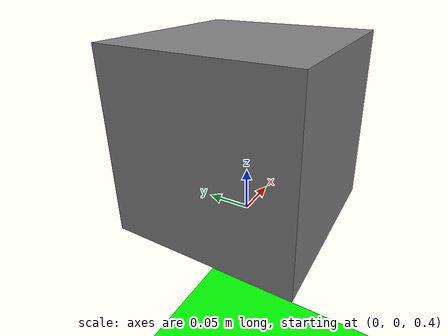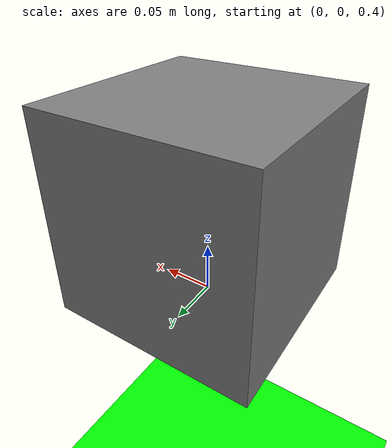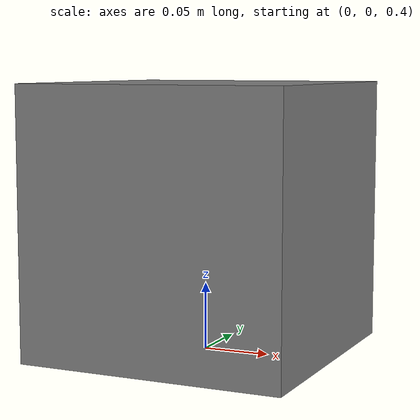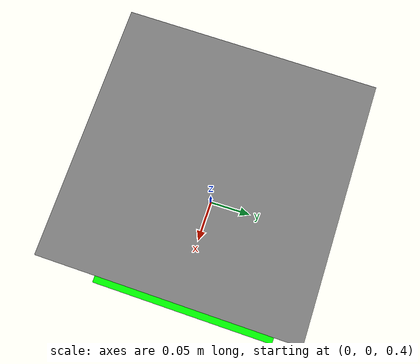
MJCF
<?xml version="1.0" ?>
<mujoco>
    <option timestep="0.005" />
    <worldbody>
    	<body name="robot" pos="0 0 0.5">
     	   		<joint pos="0 0 1" damping="0.1" type="ball" name="ball0"/>
       	   		<geom mass="1.0" pos="0 0 0" size="0.1 0.1 0.1" type="box" />
        </body>
        <body name="floor" pos="0 0 0.025">
            <geom condim="3" size="1.0 1.0 0.02" rgba="0 1 0 1" type="box"/>
        </body>
    </worldbody>

    <actuator>
        <motor gear="0 1 0" joint="ball0"/>
    </actuator>
</mujoco>
